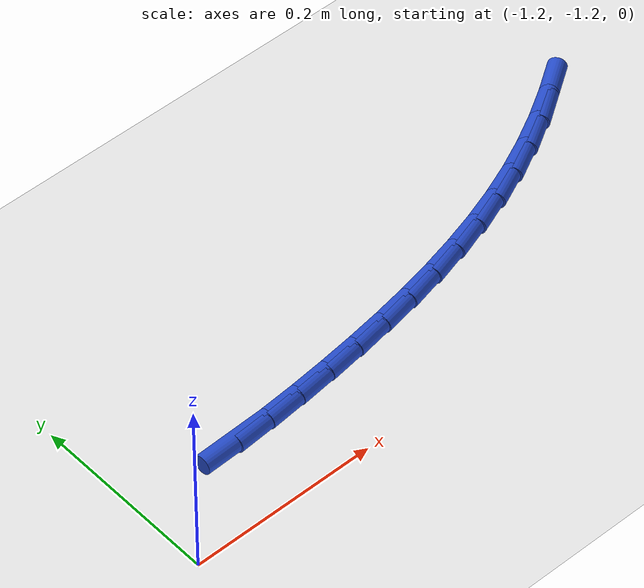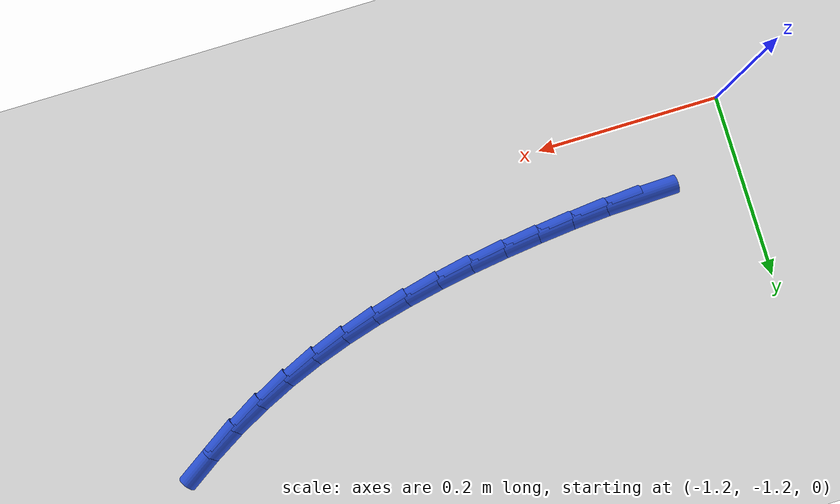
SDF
<sdf version="1.6">
 <world name="default">
  <model name="ground_plane">
   <static>1</static>
   <link name="link">
    <collision name="collision">
     <geometry><plane><normal>0 0 1</normal><size>100 100</size></plane></geometry>
     <surface><friction><ode><mu>100</mu><mu2>50</mu2></ode></friction></surface>
    </collision>
    <visual name="visual">
     <cast_shadows>0</cast_shadows>
     <geometry><plane><normal>0 0 1</normal><size>100 100</size></plane></geometry>
     <material>
      <script><uri>file://media/materials/scripts/gazebo.material</uri><name>Gazebo/WhiteGlow</name></script>
     </material>
    </visual>
   </link>
  </model>
  <model name="line">
   <link name="link_135">
    <pose>-1.0884022037787546 -1.1212329254750892 0.01 0 1.57 0.03228864275965527</pose>
    <collision name="collision">
     <geometry><cylinder><radius>0.01</radius><length>0.08</length></cylinder></geometry>
    </collision>
    <visual name="visual">
     <material>
      <script><name>Gazebo/Blue</name><uri>file://media/materials/scripts/gazebo.material</uri></script>
     </material>
     <geometry><cylinder><radius>0.01</radius><length>0.08</length></cylinder></geometry>
    </visual>
   </link>
   <link name="link_136">
    <pose>-1.0497621936811368 -1.1199848582358185 0.01 0 1.57 0.0749594505817182</pose>
    <collision name="collision">
     <geometry><cylinder><radius>0.01</radius><length>0.08</length></cylinder></geometry>
    </collision>
    <visual name="visual">
     <material>
      <script><name>Gazebo/Blue</name><uri>file://media/materials/scripts/gazebo.material</uri></script>
     </material>
     <geometry><cylinder><radius>0.01</radius><length>0.08</length></cylinder></geometry>
    </visual>
   </link>
   <link name="link_137">
    <pose>-1.0108412789708285 -1.1170618911624939 0.01 0 1.57 0.09981954130406995</pose>
    <collision name="collision">
     <geometry><cylinder><radius>0.01</radius><length>0.08</length></cylinder></geometry>
    </collision>
    <visual name="visual">
     <material>
      <script><name>Gazebo/Blue</name><uri>file://media/materials/scripts/gazebo.material</uri></script>
     </material>
     <geometry><cylinder><radius>0.01</radius><length>0.08</length></cylinder></geometry>
    </visual>
   </link>
   <link name="link_138">
    <pose>-0.9719455761410041 -1.1131663931743325 0.01 0 1.57 0.11884410218314466</pose>
    <collision name="collision">
     <geometry><cylinder><radius>0.01</radius><length>0.08</length></cylinder></geometry>
    </collision>
    <visual name="visual">
     <material>
      <script><name>Gazebo/Blue</name><uri>file://media/materials/scripts/gazebo.material</uri></script>
     </material>
     <geometry><cylinder><radius>0.01</radius><length>0.08</length></cylinder></geometry>
    </visual>
   </link>
   <link name="link_139">
    <pose>-0.9332628503905713 -1.1085474128217023 0.01 0 1.57 0.14175854776610217</pose>
    <collision name="collision">
     <geometry><cylinder><radius>0.01</radius><length>0.08</length></cylinder></geometry>
    </collision>
    <visual name="visual">
     <material>
      <script><name>Gazebo/Blue</name><uri>file://media/materials/scripts/gazebo.material</uri></script>
     </material>
     <geometry><cylinder><radius>0.01</radius><length>0.08</length></cylinder></geometry>
    </visual>
   </link>
   <link name="link_140">
    <pose>-0.8948805219013748 -1.1030696476393704 0.01 0 1.57 0.16901451718952365</pose>
    <collision name="collision">
     <geometry><cylinder><radius>0.01</radius><length>0.08</length></cylinder></geometry>
    </collision>
    <visual name="visual">
     <material>
      <script><name>Gazebo/Blue</name><uri>file://media/materials/scripts/gazebo.material</uri></script>
     </material>
     <geometry><cylinder><radius>0.01</radius><length>0.08</length></cylinder></geometry>
    </visual>
   </link>
   <link name="link_141">
    <pose>-0.8568828343727032 -1.0965856282969029 0.01 0 1.57 0.20077482473324787</pose>
    <collision name="collision">
     <geometry><cylinder><radius>0.01</radius><length>0.08</length></cylinder></geometry>
    </collision>
    <visual name="visual">
     <material>
      <script><name>Gazebo/Blue</name><uri>file://media/materials/scripts/gazebo.material</uri></script>
     </material>
     <geometry><cylinder><radius>0.01</radius><length>0.08</length></cylinder></geometry>
    </visual>
   </link>
   <link name="link_142">
    <pose>-0.8193540315038446 -1.088947885463865 0.01 0 1.57 0.23720070733674617</pose>
    <collision name="collision">
     <geometry><cylinder><radius>0.01</radius><length>0.08</length></cylinder></geometry>
    </collision>
    <visual name="visual">
     <material>
      <script><name>Gazebo/Blue</name><uri>file://media/materials/scripts/gazebo.material</uri></script>
     </material>
     <geometry><cylinder><radius>0.01</radius><length>0.08</length></cylinder></geometry>
    </visual>
   </link>
   <link name="link_143">
    <pose>-0.7823783569940892 -1.0800089498098235 0.01 0 1.57 0.2784326069406598</pose>
    <collision name="collision">
     <geometry><cylinder><radius>0.01</radius><length>0.08</length></cylinder></geometry>
    </collision>
    <visual name="visual">
     <material>
      <script><name>Gazebo/Blue</name><uri>file://media/materials/scripts/gazebo.material</uri></script>
     </material>
     <geometry><cylinder><radius>0.01</radius><length>0.08</length></cylinder></geometry>
    </visual>
   </link>
   <link name="link_144">
    <pose>-0.7460400545427252 -1.069621352004344 0.01 0 1.57 0.32456541275202516</pose>
    <collision name="collision">
     <geometry><cylinder><radius>0.01</radius><length>0.08</length></cylinder></geometry>
    </collision>
    <visual name="visual">
     <material>
      <script><name>Gazebo/Blue</name><uri>file://media/materials/scripts/gazebo.material</uri></script>
     </material>
     <geometry><cylinder><radius>0.01</radius><length>0.08</length></cylinder></geometry>
    </visual>
   </link>
   <link name="link_145">
    <pose>-0.7104233678490413 -1.0576376227169924 0.01 0 1.57 0.3756182722369369</pose>
    <collision name="collision">
     <geometry><cylinder><radius>0.01</radius><length>0.08</length></cylinder></geometry>
    </collision>
    <visual name="visual">
     <material>
      <script><name>Gazebo/Blue</name><uri>file://media/materials/scripts/gazebo.material</uri></script>
     </material>
     <geometry><cylinder><radius>0.01</radius><length>0.08</length></cylinder></geometry>
    </visual>
   </link>
   <link name="link_146">
    <pose>-0.6756125406123265 -1.0439102926173345 0.01 0 1.57 0.4313179257924492</pose>
    <collision name="collision">
     <geometry><cylinder><radius>0.01</radius><length>0.08</length></cylinder></geometry>
    </collision>
    <visual name="visual">
     <material>
      <script><name>Gazebo/Blue</name><uri>file://media/materials/scripts/gazebo.material</uri></script>
     </material>
     <geometry><cylinder><radius>0.01</radius><length>0.08</length></cylinder></geometry>
    </visual>
   </link>
   <link name="link_147">
    <pose>-0.6416892105258392 -1.028298195393867 0.01 0 1.57 0.48762422747338613</pose>
    <collision name="collision">
     <geometry><cylinder><radius>0.01</radius><length>0.08</length></cylinder></geometry>
    </collision>
    <visual name="visual">
     <material>
      <script><name>Gazebo/Blue</name><uri>file://media/materials/scripts/gazebo.material</uri></script>
     </material>
     <geometry><cylinder><radius>0.01</radius><length>0.08</length></cylinder></geometry>
    </visual>
   </link>
   <link name="link_148">
    <pose>-0.6086803890351437 -1.0107922865603427 0.01 0 1.57 0.5406925978697968</pose>
    <collision name="collision">
     <geometry><cylinder><radius>0.01</radius><length>0.08</length></cylinder></geometry>
    </collision>
    <visual name="visual">
     <material>
      <script><name>Gazebo/Blue</name><uri>file://media/materials/scripts/gazebo.material</uri></script>
     </material>
     <geometry><cylinder><radius>0.01</radius><length>0.08</length></cylinder></geometry>
    </visual>
   </link>
   <link name="link_149">
    <pose>-0.5765612589199256 -0.9915088770818921 0.01 0 1.57 0.5902609991125453</pose>
    <collision name="collision">
     <geometry><cylinder><radius>0.01</radius><length>0.08</length></cylinder></geometry>
    </collision>
    <visual name="visual">
     <material>
      <script><name>Gazebo/Blue</name><uri>file://media/materials/scripts/gazebo.material</uri></script>
     </material>
     <geometry><cylinder><radius>0.01</radius><length>0.08</length></cylinder></geometry>
    </visual>
   </link>
  </model>
 </world>
</sdf>
